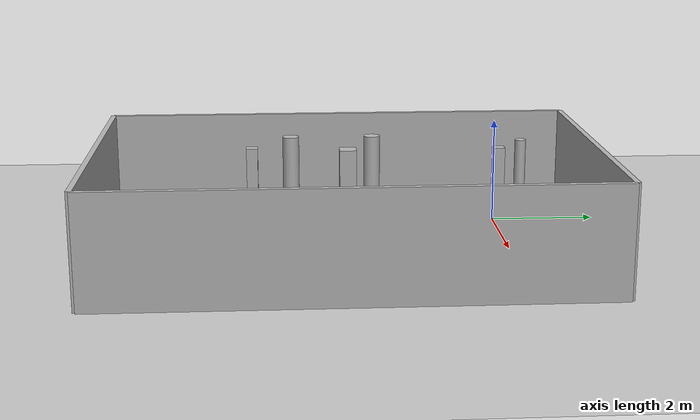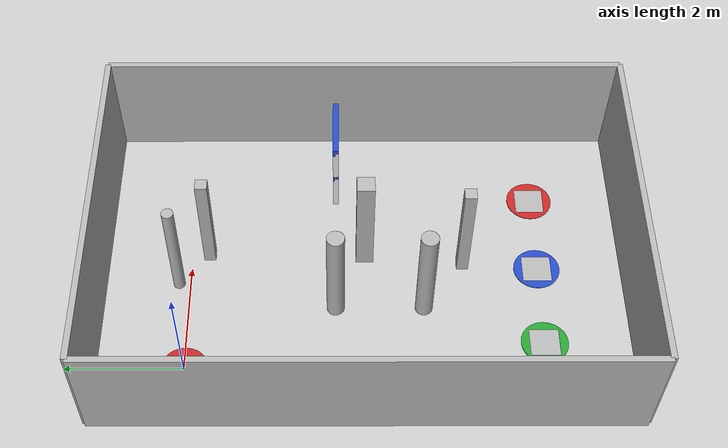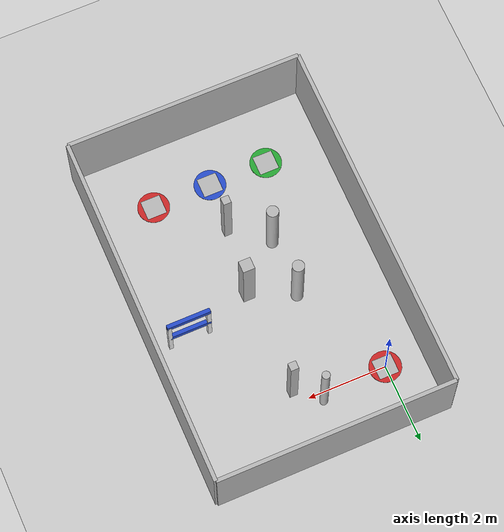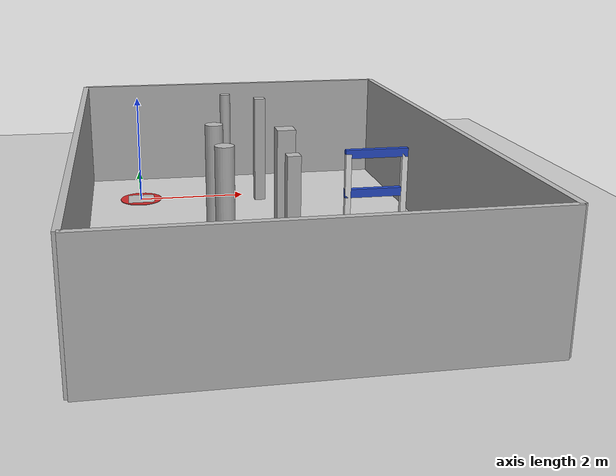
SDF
<?xml version="1.0" ?>
<sdf version="1.6">
  <world name="task_world">
    <include><uri>model://sun</uri></include>
    <include><uri>model://ground_plane</uri></include>

    <model name="boundary_walls">
      <static>1</static>
      <link name="walls">
        <collision name="south"><pose>3 -1 1 0 0 0</pose><geometry><box><size>9 0.1 2</size></box></geometry></collision>
        <visual name="south_v"><pose>3 -1 1 0 0 0</pose><geometry><box><size>9 0.1 2</size></box></geometry></visual>
        <collision name="north"><pose>3 5 1 0 0 0</pose><geometry><box><size>9 0.1 2</size></box></geometry></collision>
        <visual name="north_v"><pose>3 5 1 0 0 0</pose><geometry><box><size>9 0.1 2</size></box></geometry></visual>
        <collision name="west"><pose>-1.5 2 1 0 0 0</pose><geometry><box><size>0.1 6 2</size></box></geometry></collision>
        <visual name="west_v"><pose>-1.5 2 1 0 0 0</pose><geometry><box><size>0.1 6 2</size></box></geometry></visual>
        <collision name="east"><pose>7.5 2 1 0 0 0</pose><geometry><box><size>0.1 6 2</size></box></geometry></collision>
        <visual name="east_v"><pose>7.5 2 1 0 0 0</pose><geometry><box><size>0.1 6 2</size></box></geometry></visual>
      </link>
      <pose>0 0 0 0 0 -1.570796</pose>
    </model>

    <model name="h_takeoff">
      <static>1</static>
      <pose>0.000000 0.000000 0.005000 0.000000 0.000000 -1.570796</pose>
      <link name="link">
        <visual name="base">
          <geometry><cylinder><radius>0.4</radius><length>0.01</length></cylinder></geometry>
          <material><script><name>Gazebo/Red</name></script></material>
        </visual>
        <visual name="h_logo">
          <pose>0 0 0.006 0 0 0</pose>
          <geometry><plane><normal>0 0 1</normal><size>0.5 0.5</size></plane></geometry>
          <material><script><uri>model://h_marker/materials/scripts</uri><uri>model://h_marker/materials/textures</uri><name>HMarker/Diffuse</name></script></material>
        </visual>
      </link>
    </model>

    <model name="h_land_red">
      <static>1</static>
      <pose>3.500000 -6.000000 0.005000 0.000000 0.000000 -1.570796</pose>
      <link name="link">
        <visual name="base">
          <geometry><cylinder><radius>0.4</radius><length>0.01</length></cylinder></geometry>
          <material><script><name>Gazebo/Red</name></script></material>
        </visual>
        <visual name="h_logo">
          <pose>0 0 0.006 0 0 0</pose>
          <geometry><plane><normal>0 0 1</normal><size>0.5 0.5</size></plane></geometry>
          <material><script><uri>model://h_marker/materials/scripts</uri><uri>model://h_marker/materials/textures</uri><name>HMarker/Diffuse</name></script></material>
        </visual>
      </link>
    </model>

    <model name="h_land_blue">
      <static>1</static>
      <pose>2.000000 -6.000000 0.005000 0.000000 0.000000 -1.570796</pose>
      <link name="link">
        <visual name="base">
          <geometry><cylinder><radius>0.4</radius><length>0.01</length></cylinder></geometry>
          <material><script><name>Gazebo/Blue</name></script></material>
        </visual>
        <visual name="h_logo">
          <pose>0 0 0.006 0 0 0</pose>
          <geometry><plane><normal>0 0 1</normal><size>0.5 0.5</size></plane></geometry>
          <material><script><uri>model://h_marker/materials/scripts</uri><uri>model://h_marker/materials/textures</uri><name>HMarker/Diffuse</name></script></material>
        </visual>
      </link>
    </model>

    <model name="h_land_green">
      <static>1</static>
      <pose>0.500000 -6.000000 0.005000 0.000000 0.000000 -1.570796</pose>
      <link name="link">
        <visual name="base">
          <geometry><cylinder><radius>0.4</radius><length>0.01</length></cylinder></geometry>
          <material><script><name>Gazebo/Green</name></script></material>
        </visual>
        <visual name="h_logo">
          <pose>0 0 0.006 0 0 0</pose>
          <geometry><plane><normal>0 0 1</normal><size>0.5 0.5</size></plane></geometry>
          <material><script><uri>model://h_marker/materials/scripts</uri><uri>model://h_marker/materials/textures</uri><name>HMarker/Diffuse</name></script></material>
        </visual>
      </link>
    </model>

    <model name="racing_gate">
      <static>1</static>
      <pose>4.000000 -2.500000 0.000000 0.000000 0.000000 -1.570796</pose>
      <link name="gate_link">
        <visual name="left_v"><pose>0 -0.5 0.7 0 0 0</pose><geometry><box><size>0.1 0.1 1.4</size></box></geometry><material><script><name>Gazebo/White</name></script></material></visual>
        <collision name="left_c"><pose>0 -0.5 0.7 0 0 0</pose><geometry><box><size>0.1 0.1 1.4</size></box></geometry></collision>
        <visual name="right_v"><pose>0 0.5 0.7 0 0 0</pose><geometry><box><size>0.1 0.1 1.4</size></box></geometry><material><script><name>Gazebo/White</name></script></material></visual>
        <collision name="right_c"><pose>0 0.5 0.7 0 0 0</pose><geometry><box><size>0.1 0.1 1.4</size></box></geometry></collision>
        <visual name="bottom_v"><pose>0 0 0.7 0 0 0</pose><geometry><box><size>0.1 1.1 0.15</size></box></geometry><material><script><name>Gazebo/Blue</name></script></material></visual>
        <collision name="bottom_c"><pose>0 0 0.7 0 0 0</pose><geometry><box><size>0.1 1.1 0.15</size></box></geometry></collision>
        <visual name="top_v"><pose>0 0 1.4 0 0 0</pose><geometry><box><size>0.1 1.1 0.15</size></box></geometry><material><script><name>Gazebo/Blue</name></script></material></visual>
        <collision name="top_c"><pose>0 0 1.4 0 0 0</pose><geometry><box><size>0.1 1.1 0.15</size></box></geometry></collision>
      </link>
    </model>

    <model name="obs_left_1"><static>1</static><pose>1.700000 0.200000 1.000000 0.000000 0.000000 -1.570796</pose><link name="l"><collision name="c"><geometry><cylinder><radius>0.1</radius><length>2</length></cylinder></geometry></collision><visual name="v"><geometry><cylinder><radius>0.1</radius><length>2</length></cylinder></geometry></visual></link></model>
    <model name="obs_left_2"><static>1</static><pose>2.300000 -0.300000 1.000000 0.000000 0.000000 -1.570796</pose><link name="l"><collision name="c"><geometry><box><size>0.2 0.2 2</size></box></geometry></collision><visual name="v"><geometry><box><size>0.2 0.2 2</size></box></geometry></visual></link></model>
    <model name="obs_mid_1"><static>1</static><pose>1.200000 -2.500000 1.000000 0.000000 0.000000 -1.570796</pose><link name="l"><collision name="c"><geometry><cylinder><radius>0.15</radius><length>2</length></cylinder></geometry></collision><visual name="v"><geometry><cylinder><radius>0.15</radius><length>2</length></cylinder></geometry></visual></link></model>
    <model name="obs_mid_2"><static>1</static><pose>1.200000 -4.000000 1.000000 0.000000 0.000000 -1.570796</pose><link name="l"><collision name="c"><geometry><cylinder><radius>0.15</radius><length>2</length></cylinder></geometry></collision><visual name="v"><geometry><cylinder><radius>0.15</radius><length>2</length></cylinder></geometry></visual></link></model>
    <model name="obs_mid_3"><static>1</static><pose>2.300000 -3.000000 1.000000 0.000000 0.000000 -1.570796</pose><link name="l"><collision name="c"><geometry><box><size>0.3 0.3 2</size></box></geometry></collision><visual name="v"><geometry><box><size>0.3 0.3 2</size></box></geometry></visual></link></model>
    <model name="obs_mid_4"><static>1</static><pose>2.100000 -4.700000 1.000000 0.000000 0.000000 -1.570796</pose><link name="l"><collision name="c"><geometry><box><size>0.2 0.2 2</size></box></geometry></collision><visual name="v"><geometry><box><size>0.2 0.2 2</size></box></geometry></visual></link></model>

  </world>
</sdf>
